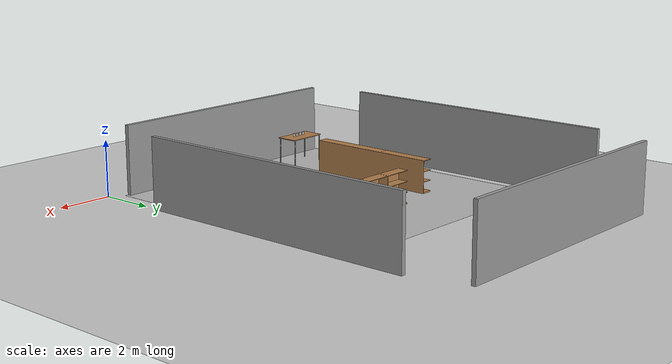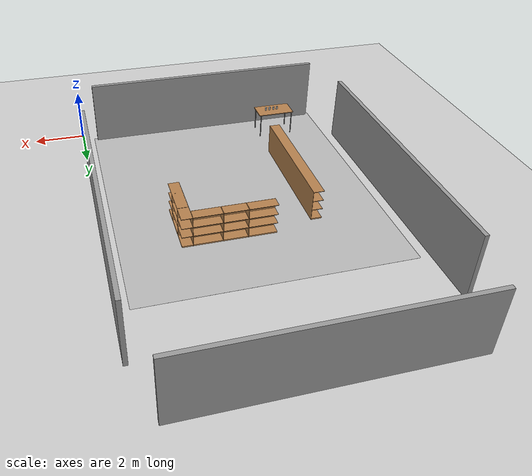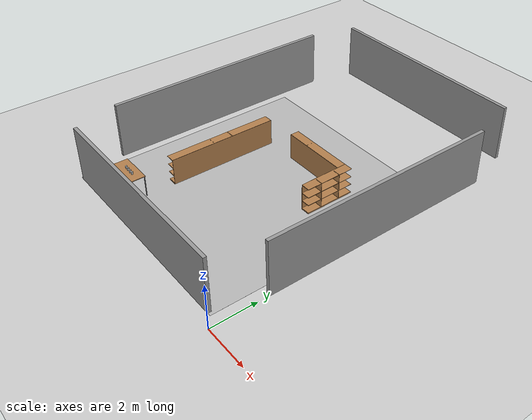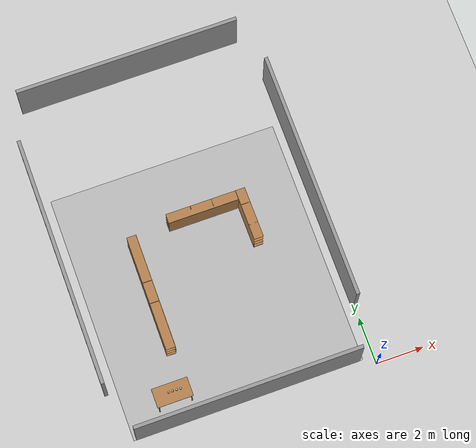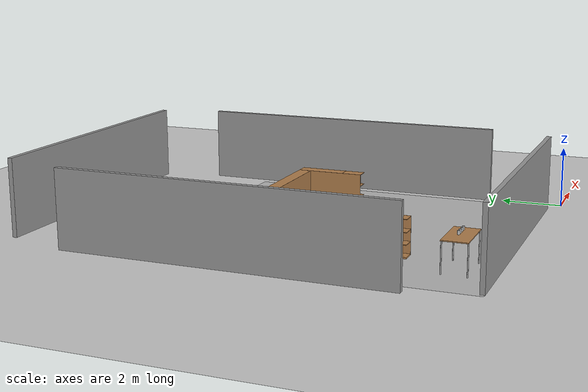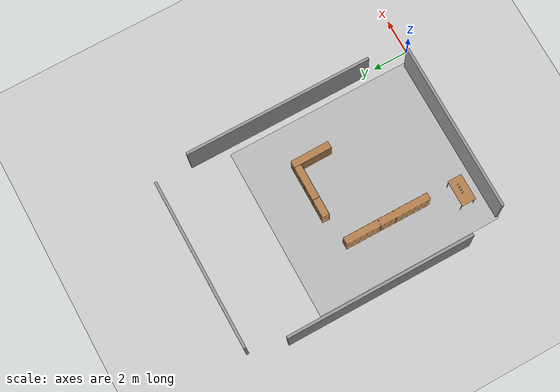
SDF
<sdf version="1.6">
 <world name="default">
  <light name="sun" type="directional">
   <cast_shadows>0</cast_shadows>
   <pose>0 0 10 0 -0 0</pose>
   <diffuse>0.8 0.8 0.8 1</diffuse>
   <specular>0.2 0.2 0.2 1</specular>
   <attenuation>
    <range>1000</range>
    <constant>0.9</constant>
    <linear>0.01</linear>
    <quadratic>0.001</quadratic>
   </attenuation>
   <direction>-0.5 0.1 -0.9</direction>
   <spot><inner_angle>0</inner_angle><outer_angle>0</outer_angle><falloff>0</falloff></spot>
  </light>
  <model name="ground_plane">
   <static>1</static>
   <link name="link">
    <collision name="collision">
     <geometry><plane><normal>0 0 1</normal><size>100 100</size></plane></geometry>
     <surface><friction><ode><mu>100</mu><mu2>50</mu2></ode></friction></surface>
    </collision>
    <visual name="visual">
     <cast_shadows>0</cast_shadows>
     <geometry><plane><normal>0 0 1</normal><size>100 100</size></plane></geometry>
     <material>
      <script><uri>file://media/materials/scripts/gazebo.material</uri><name>Gazebo/Grey</name></script>
     </material>
    </visual>
   </link>
  </model>
  <gravity>0 0 -9.8</gravity>
  <magnetic_field>6e-06 2.3e-05 -4.2e-05</magnetic_field>
  <atmosphere type="adiabatic"/>
  <physics name="default_physics" default="0" type="ode">
   <max_step_size>0.001</max_step_size>
   <real_time_factor>1</real_time_factor>
   <real_time_update_rate>1000</real_time_update_rate>
  </physics>
  <scene><ambient>0.4 0.4 0.4 1</ambient><background>0.7 0.7 0.7 1</background><shadows>1</shadows></scene>
  <audio><device>default</device></audio>
  <spherical_coordinates>
   <surface_model>EARTH_WGS84</surface_model>
   <latitude_deg>0</latitude_deg>
   <longitude_deg>0</longitude_deg>
   <elevation>0</elevation>
   <heading_deg>0</heading_deg>
  </spherical_coordinates>
  <model name="walls">
   <pose>-5.34 7.72 0 0 -0 0</pose>
   <link name="wall_1">
    <collision name="wall_1_Collision">
     <geometry><box><size>9.5 0.15 2.5</size></box></geometry>
     <pose>0 0 1.25 0 -0 0</pose>
    </collision>
    <visual name="wall_1_Visual">
     <pose>0 0 1.25 0 -0 0</pose>
     <geometry><box><size>9.5 0.15 2.5</size></box></geometry>
     <material>
      <script><uri>file://media/materials/scripts/gazebo.material</uri><name>Gazebo/Grey</name></script>
      <ambient>1 1 1 1</ambient>
     </material>
     <meta><layer>0</layer></meta>
    </visual>
    <pose>0 -7.3 0 0 -0 0</pose>
   </link>
   <link name="wall_2">
    <collision name="wall_2_Collision">
     <geometry><box><size>10.55 0.15 2.5</size></box></geometry>
     <pose>0 0 1.25 0 -0 0</pose>
    </collision>
    <visual name="wall_2_Visual">
     <pose>0 0 1.25 0 -0 0</pose>
     <geometry><box><size>10.55 0.15 2.5</size></box></geometry>
     <material>
      <script><uri>file://media/materials/scripts/gazebo.material</uri><name>Gazebo/Grey</name></script>
      <ambient>1 1 1 1</ambient>
     </material>
     <meta><layer>0</layer></meta>
    </visual>
    <pose>5.3 0 0 0 -0 1.5708</pose>
   </link>
   <link name="wall_3">
    <collision name="wall_3_Collision">
     <geometry><box><size>9.5 0.15 2.5</size></box></geometry>
     <pose>0 0 1.25 0 -0 0</pose>
    </collision>
    <visual name="wall_3_Visual">
     <pose>0 0 1.25 0 -0 0</pose>
     <geometry><box><size>9.5 0.15 2.5</size></box></geometry>
     <material>
      <script><uri>file://media/materials/scripts/gazebo.material</uri><name>Gazebo/Grey</name></script>
      <ambient>1 1 1 1</ambient>
     </material>
     <meta><layer>0</layer></meta>
    </visual>
    <pose>0 7.3 0 0 -0 3.14159</pose>
   </link>
   <link name="wall_4">
    <collision name="wall_4_Collision">
     <geometry><box><size>10.55 0.15 2.5</size></box></geometry>
     <pose>0 0 1.25 0 -0 0</pose>
    </collision>
    <visual name="wall_4_Visual">
     <pose>0 0 1.25 0 -0 0</pose>
     <geometry><box><size>10.55 0.15 2.5</size></box></geometry>
     <material>
      <script><uri>file://media/materials/scripts/gazebo.material</uri><name>Gazebo/Grey</name></script>
      <ambient>1 1 1 1</ambient>
     </material>
     <meta><layer>0</layer></meta>
    </visual>
    <pose>-5.3 0 0 0 -0 -1.5708</pose>
   </link>
   <static>1</static>
  </model>
  <model name="bookshelf_1">
   <static>1</static>
   <link name="link">
    <inertial><mass>1</mass></inertial>
    <collision name="back">
     <pose>0 0.005 0.6 0 -0 0</pose>
     <geometry><box><size>4.9 0.01 1.2</size></box></geometry>
    </collision>
    <visual name="visual1">
     <pose>0 0.005 0.6 0 -0 0</pose>
     <geometry><box><size>4.9 0.01 1.2</size></box></geometry>
     <material>
      <script><uri>file://media/materials/scripts/gazebo.material</uri><name>Gazebo/Wood</name></script>
     </material>
    </visual>
    <collision name="left_side">
     <pose>0.45 -0.195 0.6 0 -0 0</pose>
     <geometry><box><size>0.02 0.4 1.2</size></box></geometry>
    </collision>
    <visual name="visual2">
     <pose>0.45 -0.195 0.6 0 -0 0</pose>
     <geometry><box><size>0.02 0.4 1.2</size></box></geometry>
     <material>
      <script><uri>file://media/materials/scripts/gazebo.material</uri><name>Gazebo/Wood</name></script>
     </material>
    </visual>
    <collision name="right_side">
     <pose>-0.45 -0.195 0.6 0 -0 0</pose>
     <geometry><box><size>0.02 0.4 1.2</size></box></geometry>
    </collision>
    <visual name="visual3">
     <pose>-0.45 -0.195 0.6 0 -0 0</pose>
     <geometry><box><size>0.02 0.4 1.2</size></box></geometry>
     <material>
      <script><uri>file://media/materials/scripts/gazebo.material</uri><name>Gazebo/Wood</name></script>
     </material>
    </visual>
    <collision name="bottom">
     <pose>0 -0.195 0.03 0 -0 0</pose>
     <geometry><box><size>4.9 0.4 0.06</size></box></geometry>
    </collision>
    <visual name="visual4">
     <pose>0 -0.195 0.03 0 -0 0</pose>
     <geometry><box><size>4.9 0.4 0.06</size></box></geometry>
     <material>
      <script><uri>file://media/materials/scripts/gazebo.material</uri><name>Gazebo/Wood</name></script>
     </material>
    </visual>
    <collision name="top">
     <pose>0 -0.195 1.19 0 -0 0</pose>
     <geometry><box><size>4.9 0.4 0.02</size></box></geometry>
    </collision>
    <visual name="visual5">
     <pose>0 -0.195 1.19 0 -0 0</pose>
     <geometry><box><size>4.9 0.4 0.02</size></box></geometry>
     <material>
      <script><uri>file://media/materials/scripts/gazebo.material</uri><name>Gazebo/Wood</name></script>
     </material>
    </visual>
    <collision name="low_shelf">
     <pose>0 -0.195 0.43 0 -0 0</pose>
     <geometry><box><size>4.9 0.4 0.02</size></box></geometry>
    </collision>
    <visual name="visual6">
     <pose>0 -0.195 0.43 0 -0 0</pose>
     <geometry><box><size>4.9 0.4 0.02</size></box></geometry>
     <material>
      <script><uri>file://media/materials/scripts/gazebo.material</uri><name>Gazebo/Wood</name></script>
     </material>
    </visual>
    <collision name="high_shelf">
     <pose>0 -0.195 0.8 0 -0 0</pose>
     <geometry><box><size>4.9 0.4 0.02</size></box></geometry>
    </collision>
    <visual name="visual7">
     <pose>0 -0.195 0.8 0 -0 0</pose>
     <geometry><box><size>4.9 0.4 0.02</size></box></geometry>
     <material>
      <script><uri>file://media/materials/scripts/gazebo.material</uri><name>Gazebo/Wood</name></script>
     </material>
    </visual>
   </link>
   <pose>-7.42906 5.59882 0 0 0 -1.57461</pose>
  </model>
  <model name="bookshelf_2">
   <static>1</static>
   <link name="link">
    <inertial><mass>1</mass></inertial>
    <collision name="back">
     <pose>0 0.005 0.6 0 -0 0</pose>
     <geometry><box><size>3 0.01 1.2</size></box></geometry>
    </collision>
    <visual name="visual1">
     <pose>0 0.005 0.6 0 -0 0</pose>
     <geometry><box><size>3 0.01 1.2</size></box></geometry>
     <material>
      <script><uri>file://media/materials/scripts/gazebo.material</uri><name>Gazebo/Wood</name></script>
     </material>
    </visual>
    <collision name="left_side">
     <pose>0.45 -0.195 0.6 0 -0 0</pose>
     <geometry><box><size>0.02 0.4 1.2</size></box></geometry>
    </collision>
    <visual name="visual2">
     <pose>0.45 -0.195 0.6 0 -0 0</pose>
     <geometry><box><size>0.02 0.4 1.2</size></box></geometry>
     <material>
      <script><uri>file://media/materials/scripts/gazebo.material</uri><name>Gazebo/Wood</name></script>
     </material>
    </visual>
    <collision name="right_side">
     <pose>-0.45 -0.195 0.6 0 -0 0</pose>
     <geometry><box><size>0.02 0.4 1.2</size></box></geometry>
    </collision>
    <visual name="visual3">
     <pose>-0.45 -0.195 0.6 0 -0 0</pose>
     <geometry><box><size>0.02 0.4 1.2</size></box></geometry>
     <material>
      <script><uri>file://media/materials/scripts/gazebo.material</uri><name>Gazebo/Wood</name></script>
     </material>
    </visual>
    <collision name="bottom">
     <pose>0 -0.195 0.03 0 -0 0</pose>
     <geometry><box><size>3 0.4 0.06</size></box></geometry>
    </collision>
    <visual name="visual4">
     <pose>0 -0.195 0.03 0 -0 0</pose>
     <geometry><box><size>3 0.4 0.06</size></box></geometry>
     <material>
      <script><uri>file://media/materials/scripts/gazebo.material</uri><name>Gazebo/Wood</name></script>
     </material>
    </visual>
    <collision name="top">
     <pose>0 -0.195 1.19 0 -0 0</pose>
     <geometry><box><size>0.88 0.4 0.02</size></box></geometry>
    </collision>
    <visual name="visual5">
     <pose>0 -0.195 1.19 0 -0 0</pose>
     <geometry><box><size>3 0.4 0.02</size></box></geometry>
     <material>
      <script><uri>file://media/materials/scripts/gazebo.material</uri><name>Gazebo/Wood</name></script>
     </material>
    </visual>
    <collision name="low_shelf">
     <pose>0 -0.195 0.43 0 -0 0</pose>
     <geometry><box><size>3 0.4 0.02</size></box></geometry>
    </collision>
    <visual name="visual6">
     <pose>0 -0.195 0.43 0 -0 0</pose>
     <geometry><box><size>3 0.4 0.02</size></box></geometry>
     <material>
      <script><uri>file://media/materials/scripts/gazebo.material</uri><name>Gazebo/Wood</name></script>
     </material>
    </visual>
    <collision name="high_shelf">
     <pose>0 -0.195 0.8 0 -0 0</pose>
     <geometry><box><size>3 0.4 0.02</size></box></geometry>
    </collision>
    <visual name="visual7">
     <pose>0 -0.195 0.8 0 -0 0</pose>
     <geometry><box><size>3 0.4 0.02</size></box></geometry>
     <material>
      <script><uri>file://media/materials/scripts/gazebo.material</uri><name>Gazebo/Wood</name></script>
     </material>
    </visual>
   </link>
   <pose>-4.50428 8.05302 0 0 -0 3.14058</pose>
  </model>
  <model name="bookshelf_3">
   <static>1</static>
   <link name="link">
    <inertial><mass>1</mass></inertial>
    <collision name="back">
     <pose>0 0.005 0.6 0 -0 0</pose>
     <geometry><box><size>2.2 0.01 1.2</size></box></geometry>
    </collision>
    <visual name="visual1">
     <pose>0 0.005 0.6 0 -0 0</pose>
     <geometry><box><size>2.2 0.01 1.2</size></box></geometry>
     <material>
      <script><uri>file://media/materials/scripts/gazebo.material</uri><name>Gazebo/Wood</name></script>
     </material>
    </visual>
    <collision name="left_side">
     <pose>0.45 -0.195 0.6 0 -0 0</pose>
     <geometry><box><size>0.02 0.4 1.2</size></box></geometry>
    </collision>
    <visual name="visual2">
     <pose>0.45 -0.195 0.6 0 -0 0</pose>
     <geometry><box><size>0.02 0.4 1.2</size></box></geometry>
     <material>
      <script><uri>file://media/materials/scripts/gazebo.material</uri><name>Gazebo/Wood</name></script>
     </material>
    </visual>
    <collision name="right_side">
     <pose>-0.45 -0.195 0.6 0 -0 0</pose>
     <geometry><box><size>0.02 0.4 1.2</size></box></geometry>
    </collision>
    <visual name="visual3">
     <pose>-0.45 -0.195 0.6 0 -0 0</pose>
     <geometry><box><size>0.02 0.4 1.2</size></box></geometry>
     <material>
      <script><uri>file://media/materials/scripts/gazebo.material</uri><name>Gazebo/Wood</name></script>
     </material>
    </visual>
    <collision name="bottom">
     <pose>0 -0.195 0.03 0 -0 0</pose>
     <geometry><box><size>2.2 0.4 0.06</size></box></geometry>
    </collision>
    <visual name="visual4">
     <pose>0 -0.195 0.03 0 -0 0</pose>
     <geometry><box><size>2.2 0.4 0.06</size></box></geometry>
     <material>
      <script><uri>file://media/materials/scripts/gazebo.material</uri><name>Gazebo/Wood</name></script>
     </material>
    </visual>
    <collision name="top">
     <pose>0 -0.195 1.19 0 -0 0</pose>
     <geometry><box><size>2.2 0.4 0.02</size></box></geometry>
    </collision>
    <visual name="visual5">
     <pose>0 -0.195 1.19 0 -0 0</pose>
     <geometry><box><size>2.2 0.4 0.02</size></box></geometry>
     <material>
      <script><uri>file://media/materials/scripts/gazebo.material</uri><name>Gazebo/Wood</name></script>
     </material>
    </visual>
    <collision name="low_shelf">
     <pose>0 -0.195 0.43 0 -0 0</pose>
     <geometry><box><size>2.2 0.4 0.02</size></box></geometry>
    </collision>
    <visual name="visual6">
     <pose>0 -0.195 0.43 0 -0 0</pose>
     <geometry><box><size>2.2 0.4 0.02</size></box></geometry>
     <material>
      <script><uri>file://media/materials/scripts/gazebo.material</uri><name>Gazebo/Wood</name></script>
     </material>
    </visual>
    <collision name="high_shelf">
     <pose>0 -0.195 0.8 0 -0 0</pose>
     <geometry><box><size>2.2 0.4 0.02</size></box></geometry>
    </collision>
    <visual name="visual7">
     <pose>0 -0.195 0.8 0 -0 0</pose>
     <geometry><box><size>2.2 0.4 0.02</size></box></geometry>
     <material>
      <script><uri>file://media/materials/scripts/gazebo.material</uri><name>Gazebo/Wood</name></script>
     </material>
    </visual>
   </link>
   <pose>-2.9837 7.34798 0 0 -0 1.57824</pose>
  </model>
  <model name="floor">
   <link name="main">
    <pose>0 0 0.01 0 -0 0</pose>
    <collision name="main_Collision"><geometry><box><size>9.75 10.55 0.001</size></box></geometry></collision>
    <visual name="main_Visual">
     <geometry><box><size>9.75 10.55 0.001</size></box></geometry>
     <material>
      <script>
       <uri>model://Floor_room/materials/scripts</uri>
       <uri>model://Floor_room/materials/textures</uri>
       <name>floor_room</name>
      </script>
     </material>
    </visual>
   </link>
   <static>1</static>
   <pose>-5.32749 5.63049 0 0 -0 0</pose>
  </model>
  <model name="table_2">
   <static>1</static>
   <link name="link">
    <collision name="surface">
     <pose>0 0 1 0 -0 0</pose>
     <geometry><box><size>1.5 0.8 0.03</size></box></geometry>
     <surface><friction><ode><mu>0.6</mu><mu2>0.6</mu2></ode></friction></surface>
    </collision>
    <visual name="visual1">
     <pose>0 0 1 0 -0 0</pose>
     <geometry><box><size>1.5 0.8 0.03</size></box></geometry>
     <material>
      <script><uri>file://media/materials/scripts/gazebo.material</uri><name>Gazebo/Wood</name></script>
     </material>
    </visual>
    <collision name="front_left_leg">
     <pose>0.68 0.38 0.5 0 -0 0</pose>
     <geometry><cylinder><radius>0.02</radius><length>1</length></cylinder></geometry>
    </collision>
    <visual name="front_left_leg">
     <pose>0.68 0.38 0.5 0 -0 0</pose>
     <geometry><cylinder><radius>0.02</radius><length>1</length></cylinder></geometry>
     <material>
      <script><uri>file://media/materials/scripts/gazebo.material</uri><name>Gazebo/Grey</name></script>
     </material>
    </visual>
    <collision name="front_right_leg">
     <pose>0.68 -0.38 0.5 0 -0 0</pose>
     <geometry><cylinder><radius>0.02</radius><length>1</length></cylinder></geometry>
    </collision>
    <visual name="front_right_leg">
     <pose>0.68 -0.38 0.5 0 -0 0</pose>
     <geometry><cylinder><radius>0.02</radius><length>1</length></cylinder></geometry>
     <material>
      <script><uri>file://media/materials/scripts/gazebo.material</uri><name>Gazebo/Grey</name></script>
     </material>
    </visual>
    <collision name="back_right_leg">
     <pose>-0.68 -0.38 0.5 0 -0 0</pose>
     <geometry><cylinder><radius>0.02</radius><length>1</length></cylinder></geometry>
    </collision>
    <visual name="back_right_leg">
     <pose>-0.68 -0.38 0.5 0 -0 0</pose>
     <geometry><cylinder><radius>0.02</radius><length>1</length></cylinder></geometry>
     <material>
      <script><uri>file://media/materials/scripts/gazebo.material</uri><name>Gazebo/Grey</name></script>
     </material>
    </visual>
    <collision name="back_left_leg">
     <pose>-0.68 0.38 0.5 0 -0 0</pose>
     <geometry><cylinder><radius>0.02</radius><length>1</length></cylinder></geometry>
    </collision>
    <visual name="back_left_leg">
     <pose>-0.68 0.38 0.5 0 -0 0</pose>
     <geometry><cylinder><radius>0.02</radius><length>1</length></cylinder></geometry>
     <material>
      <script><uri>file://media/materials/scripts/gazebo.material</uri><name>Gazebo/Grey</name></script>
     </material>
    </visual>
   </link>
   <pose>-8.15679 1.49596 0 0 -0 0</pose>
  </model>
  <model name="coffee_box">
   <link name="link_0">
    <visual name="visual">
     <pose>0 0 0.06 0 -0 0</pose>
     <geometry><cylinder><radius>0.04</radius><length>0.12</length></cylinder></geometry>
     <material>
      <script>
       <uri>model://coffee_box/materials/scripts</uri>
       <uri>model://coffee_box/materials/textures</uri>
       <name>coffee_pat</name>
      </script>
     </material>
    </visual>
    <collision name="collision">
     <geometry><cylinder><radius>0.04</radius><length>0.12</length></cylinder></geometry>
    </collision>
   </link>
   <static>1</static>
   <pose>-8.13294 1.53253 1.04282 0 -0 0</pose>
  </model>
  <model name="coffee_box_clone">
   <link name="link_0">
    <visual name="visual">
     <pose>0 0 0.06 0 -0 0</pose>
     <geometry><cylinder><radius>0.04</radius><length>0.12</length></cylinder></geometry>
     <material>
      <script>
       <uri>model://coffee_box/materials/scripts</uri>
       <uri>model://coffee_box/materials/textures</uri>
       <name>coffee_pat</name>
      </script>
     </material>
    </visual>
    <collision name="collision">
     <geometry><cylinder><radius>0.04</radius><length>0.12</length></cylinder></geometry>
    </collision>
   </link>
   <static>1</static>
   <pose>-7.9579 1.52587 1.04282 0 -0 0</pose>
  </model>
  <model name="coffee_box_clone_0">
   <link name="link_0">
    <visual name="visual">
     <pose>0 0 0.06 0 -0 0</pose>
     <geometry><cylinder><radius>0.04</radius><length>0.12</length></cylinder></geometry>
     <material>
      <script>
       <uri>model://coffee_box/materials/scripts</uri>
       <uri>model://coffee_box/materials/textures</uri>
       <name>coffee_pat</name>
      </script>
     </material>
    </visual>
    <collision name="collision">
     <geometry><cylinder><radius>0.04</radius><length>0.12</length></cylinder></geometry>
    </collision>
   </link>
   <static>1</static>
   <pose>-8.28875 1.53385 1.04282 0 -0 0</pose>
  </model>
  <model name="coffee_box_clone_1">
   <link name="link_0">
    <visual name="visual">
     <pose>0 0 0.06 0 -0 0</pose>
     <geometry><cylinder><radius>0.04</radius><length>0.12</length></cylinder></geometry>
     <material>
      <script>
       <uri>model://coffee_box/materials/scripts</uri>
       <uri>model://coffee_box/materials/textures</uri>
       <name>coffee_pat</name>
      </script>
     </material>
    </visual>
    <collision name="collision">
     <geometry><cylinder><radius>0.04</radius><length>0.12</length></cylinder></geometry>
    </collision>
   </link>
   <static>1</static>
   <pose>-7.79572 1.52422 1.04282 0 -0 0</pose>
  </model>
 </world>
</sdf>
